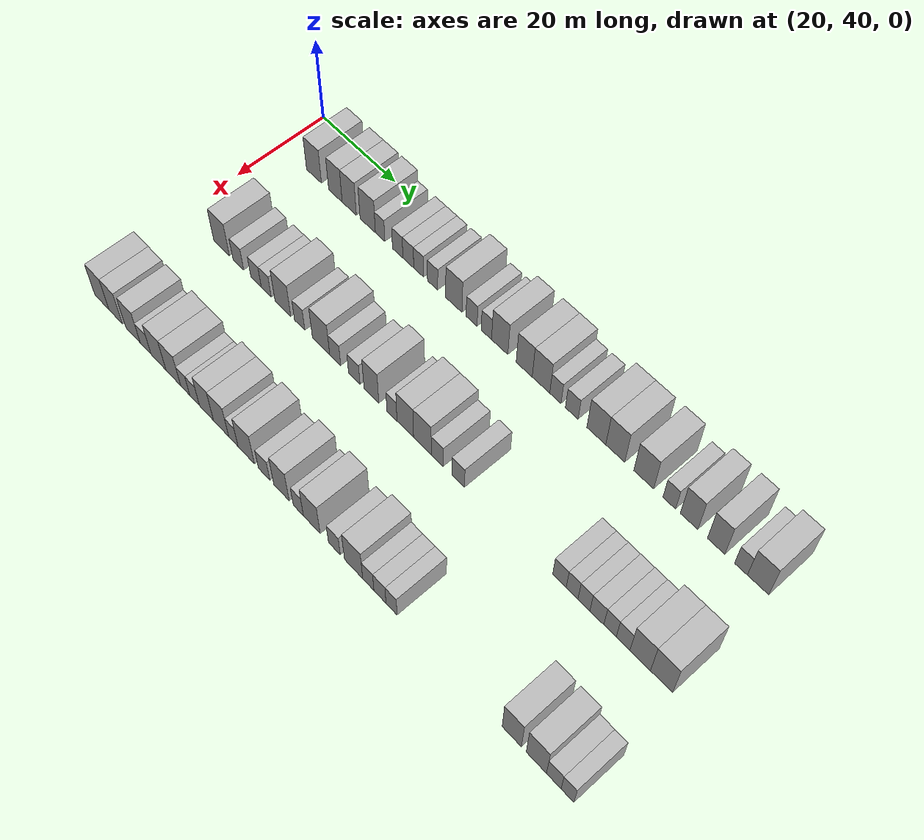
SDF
<sdf version="1.6">
 <world name="default">
  <model name="building_77">
   <static>1</static>
   <pose>25.0000 49.3601 0 0.000000 0.000000 0.000000</pose>
   <link name="link">
    <pose>0 0 4.50 0 0 0</pose>
    <collision name="collision"><geometry><box><size>10.0000 4.1657 9.0000</size></box></geometry></collision>
    <visual name="visual">
     <cast_shadows>0</cast_shadows>
     <geometry><box><size>10.0000 4.1657 9.0000</size></box></geometry>
     <material>
      <script>
       <uri>model://HANNAS_wall/materials/scripts</uri>
       <uri>model://HANNAS_wall/materials/textures</uri>
       <name>vrc/HANNAS_wall</name>
      </script>
     </material>
    </visual>
   </link>
  </model>
  <model name="building_78">
   <static>1</static>
   <pose>25.0000 55.3031 0 0.000000 0.000000 0.000000</pose>
   <link name="link">
    <pose>0 0 4.50 0 0 0</pose>
    <collision name="collision"><geometry><box><size>10.0000 3.7202 9.0000</size></box></geometry></collision>
    <visual name="visual">
     <cast_shadows>0</cast_shadows>
     <geometry><box><size>10.0000 3.7202 9.0000</size></box></geometry>
     <material>
      <script>
       <uri>model://HANNAS_wall/materials/scripts</uri>
       <uri>model://HANNAS_wall/materials/textures</uri>
       <name>vrc/HANNAS_wall</name>
      </script>
     </material>
    </visual>
   </link>
  </model>
  <model name="building_79">
   <static>1</static>
   <pose>25.0000 59.0987 0 0.000000 0.000000 0.000000</pose>
   <link name="link">
    <pose>0 0 4.50 0 0 0</pose>
    <collision name="collision"><geometry><box><size>10.0000 3.8711 9.0000</size></box></geometry></collision>
    <visual name="visual">
     <cast_shadows>0</cast_shadows>
     <geometry><box><size>10.0000 3.8711 9.0000</size></box></geometry>
     <material>
      <script>
       <uri>model://HANNAS_wall/materials/scripts</uri>
       <uri>model://HANNAS_wall/materials/textures</uri>
       <name>vrc/HANNAS_wall</name>
      </script>
     </material>
    </visual>
   </link>
  </model>
  <model name="building_80">
   <static>1</static>
   <pose>25.0000 64.0894 0 0.000000 0.000000 0.000000</pose>
   <link name="link">
    <pose>0 0 4.50 0 0 0</pose>
    <collision name="collision"><geometry><box><size>10.0000 4.1105 9.0000</size></box></geometry></collision>
    <visual name="visual">
     <cast_shadows>0</cast_shadows>
     <geometry><box><size>10.0000 4.1105 9.0000</size></box></geometry>
     <material>
      <script>
       <uri>model://HANNAS_wall/materials/scripts</uri>
       <uri>model://HANNAS_wall/materials/textures</uri>
       <name>vrc/HANNAS_wall</name>
      </script>
     </material>
    </visual>
   </link>
  </model>
  <model name="building_81">
   <static>1</static>
   <pose>25.0000 67.4068 0 0.000000 0.000000 0.000000</pose>
   <link name="link">
    <pose>0 0 3.00 0 0 0</pose>
    <collision name="collision"><geometry><box><size>10.0000 2.5242 6.0000</size></box></geometry></collision>
    <visual name="visual">
     <cast_shadows>0</cast_shadows>
     <geometry><box><size>10.0000 2.5242 6.0000</size></box></geometry>
     <material>
      <script>
       <uri>model://HANNAS_wall/materials/scripts</uri>
       <uri>model://HANNAS_wall/materials/textures</uri>
       <name>vrc/HANNAS_wall</name>
      </script>
     </material>
    </visual>
   </link>
  </model>
  <model name="building_82">
   <static>1</static>
   <pose>25.0000 72.0309 0 0.000000 0.000000 0.000000</pose>
   <link name="link">
    <pose>0 0 3.00 0 0 0</pose>
    <collision name="collision"><geometry><box><size>10.0000 2.7240 6.0000</size></box></geometry></collision>
    <visual name="visual">
     <cast_shadows>0</cast_shadows>
     <geometry><box><size>10.0000 2.7240 6.0000</size></box></geometry>
     <material>
      <script>
       <uri>model://HANNAS_wall/materials/scripts</uri>
       <uri>model://HANNAS_wall/materials/textures</uri>
       <name>vrc/HANNAS_wall</name>
      </script>
     </material>
    </visual>
   </link>
  </model>
  <model name="building_83">
   <static>1</static>
   <pose>25.0000 74.8072 0 0.000000 0.000000 0.000000</pose>
   <link name="link">
    <pose>0 0 3.00 0 0 0</pose>
    <collision name="collision"><geometry><box><size>10.0000 2.8287 6.0000</size></box></geometry></collision>
    <visual name="visual">
     <cast_shadows>0</cast_shadows>
     <geometry><box><size>10.0000 2.8287 6.0000</size></box></geometry>
     <material>
      <script>
       <uri>model://HANNAS_wall/materials/scripts</uri>
       <uri>model://HANNAS_wall/materials/textures</uri>
       <name>vrc/HANNAS_wall</name>
      </script>
     </material>
    </visual>
   </link>
  </model>
  <model name="building_84">
   <static>1</static>
   <pose>25.0000 77.4966 0 0.000000 0.000000 0.000000</pose>
   <link name="link">
    <pose>0 0 3.00 0 0 0</pose>
    <collision name="collision"><geometry><box><size>10.0000 2.5499 6.0000</size></box></geometry></collision>
    <visual name="visual">
     <cast_shadows>0</cast_shadows>
     <geometry><box><size>10.0000 2.5499 6.0000</size></box></geometry>
     <material>
      <script>
       <uri>model://HANNAS_wall/materials/scripts</uri>
       <uri>model://HANNAS_wall/materials/textures</uri>
       <name>vrc/HANNAS_wall</name>
      </script>
     </material>
    </visual>
   </link>
  </model>
  <model name="building_85">
   <static>1</static>
   <pose>25.0000 81.0801 0 0.000000 0.000000 0.000000</pose>
   <link name="link">
    <pose>0 0 3.00 0 0 0</pose>
    <collision name="collision"><geometry><box><size>10.0000 2.6172 6.0000</size></box></geometry></collision>
    <visual name="visual">
     <cast_shadows>0</cast_shadows>
     <geometry><box><size>10.0000 2.6172 6.0000</size></box></geometry>
     <material>
      <script>
       <uri>model://HANNAS_wall/materials/scripts</uri>
       <uri>model://HANNAS_wall/materials/textures</uri>
       <name>vrc/HANNAS_wall</name>
      </script>
     </material>
    </visual>
   </link>
  </model>
  <model name="building_86">
   <static>1</static>
   <pose>25.0000 86.4552 0 0.000000 0.000000 0.000000</pose>
   <link name="link">
    <pose>0 0 4.50 0 0 0</pose>
    <collision name="collision"><geometry><box><size>10.0000 4.1331 9.0000</size></box></geometry></collision>
    <visual name="visual">
     <cast_shadows>0</cast_shadows>
     <geometry><box><size>10.0000 4.1331 9.0000</size></box></geometry>
     <material>
      <script>
       <uri>model://HANNAS_wall/materials/scripts</uri>
       <uri>model://HANNAS_wall/materials/textures</uri>
       <name>vrc/HANNAS_wall</name>
      </script>
     </material>
    </visual>
   </link>
  </model>
  <model name="building_87">
   <static>1</static>
   <pose>25.0000 90.8880 0 0.000000 0.000000 0.000000</pose>
   <link name="link">
    <pose>0 0 3.00 0 0 0</pose>
    <collision name="collision"><geometry><box><size>10.0000 2.7323 6.0000</size></box></geometry></collision>
    <visual name="visual">
     <cast_shadows>0</cast_shadows>
     <geometry><box><size>10.0000 2.7323 6.0000</size></box></geometry>
     <material>
      <script>
       <uri>model://HANNAS_wall/materials/scripts</uri>
       <uri>model://HANNAS_wall/materials/textures</uri>
       <name>vrc/HANNAS_wall</name>
      </script>
     </material>
    </visual>
   </link>
  </model>
  <model name="building_88">
   <static>1</static>
   <pose>25.0000 94.5338 0 0.000000 0.000000 0.000000</pose>
   <link name="link">
    <pose>0 0 3.00 0 0 0</pose>
    <collision name="collision"><geometry><box><size>10.0000 2.5594 6.0000</size></box></geometry></collision>
    <visual name="visual">
     <cast_shadows>0</cast_shadows>
     <geometry><box><size>10.0000 2.5594 6.0000</size></box></geometry>
     <material>
      <script>
       <uri>model://HANNAS_wall/materials/scripts</uri>
       <uri>model://HANNAS_wall/materials/textures</uri>
       <name>vrc/HANNAS_wall</name>
      </script>
     </material>
    </visual>
   </link>
  </model>
  <model name="building_89">
   <static>1</static>
   <pose>25.0000 97.7946 0 0.000000 0.000000 0.000000</pose>
   <link name="link">
    <pose>0 0 4.50 0 0 0</pose>
    <collision name="collision"><geometry><box><size>10.0000 3.9622 9.0000</size></box></geometry></collision>
    <visual name="visual">
     <cast_shadows>0</cast_shadows>
     <geometry><box><size>10.0000 3.9622 9.0000</size></box></geometry>
     <material>
      <script>
       <uri>model://HANNAS_wall/materials/scripts</uri>
       <uri>model://HANNAS_wall/materials/textures</uri>
       <name>vrc/HANNAS_wall</name>
      </script>
     </material>
    </visual>
   </link>
  </model>
  <model name="building_90">
   <static>1</static>
   <pose>25.0000 103.6913 0 0.000000 0.000000 0.000000</pose>
   <link name="link">
    <pose>0 0 4.50 0 0 0</pose>
    <collision name="collision"><geometry><box><size>10.0000 3.8312 9.0000</size></box></geometry></collision>
    <visual name="visual">
     <cast_shadows>0</cast_shadows>
     <geometry><box><size>10.0000 3.8312 9.0000</size></box></geometry>
     <material>
      <script>
       <uri>model://HANNAS_wall/materials/scripts</uri>
       <uri>model://HANNAS_wall/materials/textures</uri>
       <name>vrc/HANNAS_wall</name>
      </script>
     </material>
    </visual>
   </link>
  </model>
  <model name="building_91">
   <static>1</static>
   <pose>25.0000 107.6773 0 0.000000 0.000000 0.000000</pose>
   <link name="link">
    <pose>0 0 4.50 0 0 0</pose>
    <collision name="collision"><geometry><box><size>10.0000 4.1407 9.0000</size></box></geometry></collision>
    <visual name="visual">
     <cast_shadows>0</cast_shadows>
     <geometry><box><size>10.0000 4.1407 9.0000</size></box></geometry>
     <material>
      <script>
       <uri>model://HANNAS_wall/materials/scripts</uri>
       <uri>model://HANNAS_wall/materials/textures</uri>
       <name>vrc/HANNAS_wall</name>
      </script>
     </material>
    </visual>
   </link>
  </model>
  <model name="building_92">
   <static>1</static>
   <pose>25.0000 111.0647 0 0.000000 0.000000 0.000000</pose>
   <link name="link">
    <pose>0 0 3.00 0 0 0</pose>
    <collision name="collision"><geometry><box><size>10.0000 2.6343 6.0000</size></box></geometry></collision>
    <visual name="visual">
     <cast_shadows>0</cast_shadows>
     <geometry><box><size>10.0000 2.6343 6.0000</size></box></geometry>
     <material>
      <script>
       <uri>model://HANNAS_wall/materials/scripts</uri>
       <uri>model://HANNAS_wall/materials/textures</uri>
       <name>vrc/HANNAS_wall</name>
      </script>
     </material>
    </visual>
   </link>
  </model>
  <model name="building_93">
   <static>1</static>
   <pose>25.0000 114.8504 0 0.000000 0.000000 0.000000</pose>
   <link name="link">
    <pose>0 0 3.00 0 0 0</pose>
    <collision name="collision"><geometry><box><size>10.0000 2.9370 6.0000</size></box></geometry></collision>
    <visual name="visual">
     <cast_shadows>0</cast_shadows>
     <geometry><box><size>10.0000 2.9370 6.0000</size></box></geometry>
     <material>
      <script>
       <uri>model://HANNAS_wall/materials/scripts</uri>
       <uri>model://HANNAS_wall/materials/textures</uri>
       <name>vrc/HANNAS_wall</name>
      </script>
     </material>
    </visual>
   </link>
  </model>
  <model name="building_94">
   <static>1</static>
   <pose>25.0000 120.4646 0 0.000000 0.000000 0.000000</pose>
   <link name="link">
    <pose>0 0 4.50 0 0 0</pose>
    <collision name="collision"><geometry><box><size>10.0000 4.2916 9.0000</size></box></geometry></collision>
    <visual name="visual">
     <cast_shadows>0</cast_shadows>
     <geometry><box><size>10.0000 4.2916 9.0000</size></box></geometry>
     <material>
      <script>
       <uri>model://HANNAS_wall/materials/scripts</uri>
       <uri>model://HANNAS_wall/materials/textures</uri>
       <name>vrc/HANNAS_wall</name>
      </script>
     </material>
    </visual>
   </link>
  </model>
  <model name="building_95">
   <static>1</static>
   <pose>25.0000 124.7372 0 0.000000 0.000000 0.000000</pose>
   <link name="link">
    <pose>0 0 4.50 0 0 0</pose>
    <collision name="collision"><geometry><box><size>10.0000 4.2534 9.0000</size></box></geometry></collision>
    <visual name="visual">
     <cast_shadows>0</cast_shadows>
     <geometry><box><size>10.0000 4.2534 9.0000</size></box></geometry>
     <material>
      <script>
       <uri>model://HANNAS_wall/materials/scripts</uri>
       <uri>model://HANNAS_wall/materials/textures</uri>
       <name>vrc/HANNAS_wall</name>
      </script>
     </material>
    </visual>
   </link>
  </model>
  <model name="building_96">
   <static>1</static>
   <pose>25.0000 131.0395 0 0.000000 0.000000 0.000000</pose>
   <link name="link">
    <pose>0 0 4.50 0 0 0</pose>
    <collision name="collision"><geometry><box><size>10.0000 4.3512 9.0000</size></box></geometry></collision>
    <visual name="visual">
     <cast_shadows>0</cast_shadows>
     <geometry><box><size>10.0000 4.3512 9.0000</size></box></geometry>
     <material>
      <script>
       <uri>model://HANNAS_wall/materials/scripts</uri>
       <uri>model://HANNAS_wall/materials/textures</uri>
       <name>vrc/HANNAS_wall</name>
      </script>
     </material>
    </visual>
   </link>
  </model>
  <model name="building_97">
   <static>1</static>
   <pose>25.0000 136.5811 0 0.000000 0.000000 0.000000</pose>
   <link name="link">
    <pose>0 0 3.00 0 0 0</pose>
    <collision name="collision"><geometry><box><size>10.0000 2.7320 6.0000</size></box></geometry></collision>
    <visual name="visual">
     <cast_shadows>0</cast_shadows>
     <geometry><box><size>10.0000 2.7320 6.0000</size></box></geometry>
     <material>
      <script>
       <uri>model://HANNAS_wall/materials/scripts</uri>
       <uri>model://HANNAS_wall/materials/textures</uri>
       <name>vrc/HANNAS_wall</name>
      </script>
     </material>
    </visual>
   </link>
  </model>
  <model name="building_98">
   <static>1</static>
   <pose>25.0000 140.8142 0 0.000000 0.000000 0.000000</pose>
   <link name="link">
    <pose>0 0 4.50 0 0 0</pose>
    <collision name="collision"><geometry><box><size>10.0000 3.7341 9.0000</size></box></geometry></collision>
    <visual name="visual">
     <cast_shadows>0</cast_shadows>
     <geometry><box><size>10.0000 3.7341 9.0000</size></box></geometry>
     <material>
      <script>
       <uri>model://HANNAS_wall/materials/scripts</uri>
       <uri>model://HANNAS_wall/materials/textures</uri>
       <name>vrc/HANNAS_wall</name>
      </script>
     </material>
    </visual>
   </link>
  </model>
  <model name="building_99">
   <static>1</static>
   <pose>25.0000 146.4994 0 0.000000 0.000000 0.000000</pose>
   <link name="link">
    <pose>0 0 4.50 0 0 0</pose>
    <collision name="collision"><geometry><box><size>10.0000 3.6363 9.0000</size></box></geometry></collision>
    <visual name="visual">
     <cast_shadows>0</cast_shadows>
     <geometry><box><size>10.0000 3.6363 9.0000</size></box></geometry>
     <material>
      <script>
       <uri>model://HANNAS_wall/materials/scripts</uri>
       <uri>model://HANNAS_wall/materials/textures</uri>
       <name>vrc/HANNAS_wall</name>
      </script>
     </material>
    </visual>
   </link>
  </model>
  <model name="building_100">
   <static>1</static>
   <pose>25.0000 151.6318 0 0.000000 0.000000 0.000000</pose>
   <link name="link">
    <pose>0 0 3.00 0 0 0</pose>
    <collision name="collision"><geometry><box><size>10.0000 2.6286 6.0000</size></box></geometry></collision>
    <visual name="visual">
     <cast_shadows>0</cast_shadows>
     <geometry><box><size>10.0000 2.6286 6.0000</size></box></geometry>
     <material>
      <script>
       <uri>model://HANNAS_wall/materials/scripts</uri>
       <uri>model://HANNAS_wall/materials/textures</uri>
       <name>vrc/HANNAS_wall</name>
      </script>
     </material>
    </visual>
   </link>
  </model>
  <model name="building_101">
   <static>1</static>
   <pose>25.0000 155.1230 0 0.000000 0.000000 0.000000</pose>
   <link name="link">
    <pose>0 0 4.50 0 0 0</pose>
    <collision name="collision"><geometry><box><size>10.0000 4.3538 9.0000</size></box></geometry></collision>
    <visual name="visual">
     <cast_shadows>0</cast_shadows>
     <geometry><box><size>10.0000 4.3538 9.0000</size></box></geometry>
     <material>
      <script>
       <uri>model://HANNAS_wall/materials/scripts</uri>
       <uri>model://HANNAS_wall/materials/textures</uri>
       <name>vrc/HANNAS_wall</name>
      </script>
     </material>
    </visual>
   </link>
  </model>
  <model name="building_194">
   <static>1</static>
   <pose>47.0000 50.8236 0 0.000000 0.000000 0.000000</pose>
   <link name="link">
    <pose>0 0 4.50 0 0 0</pose>
    <collision name="collision"><geometry><box><size>10.0000 4.3895 9.0000</size></box></geometry></collision>
    <visual name="visual">
     <cast_shadows>0</cast_shadows>
     <geometry><box><size>10.0000 4.3895 9.0000</size></box></geometry>
     <material>
      <script>
       <uri>model://HANNAS_wall/materials/scripts</uri>
       <uri>model://HANNAS_wall/materials/textures</uri>
       <name>vrc/HANNAS_wall</name>
      </script>
     </material>
    </visual>
   </link>
  </model>
  <model name="building_195">
   <static>1</static>
   <pose>47.0000 55.5113 0 0.000000 0.000000 0.000000</pose>
   <link name="link">
    <pose>0 0 3.00 0 0 0</pose>
    <collision name="collision"><geometry><box><size>10.0000 2.9859 6.0000</size></box></geometry></collision>
    <visual name="visual">
     <cast_shadows>0</cast_shadows>
     <geometry><box><size>10.0000 2.9859 6.0000</size></box></geometry>
     <material>
      <script>
       <uri>model://HANNAS_wall/materials/scripts</uri>
       <uri>model://HANNAS_wall/materials/textures</uri>
       <name>vrc/HANNAS_wall</name>
      </script>
     </material>
    </visual>
   </link>
  </model>
  <model name="building_196">
   <static>1</static>
   <pose>47.0000 60.4287 0 0.000000 0.000000 0.000000</pose>
   <link name="link">
    <pose>0 0 3.00 0 0 0</pose>
    <collision name="collision"><geometry><box><size>10.0000 2.8490 6.0000</size></box></geometry></collision>
    <visual name="visual">
     <cast_shadows>0</cast_shadows>
     <geometry><box><size>10.0000 2.8490 6.0000</size></box></geometry>
     <material>
      <script>
       <uri>model://HANNAS_wall/materials/scripts</uri>
       <uri>model://HANNAS_wall/materials/textures</uri>
       <name>vrc/HANNAS_wall</name>
      </script>
     </material>
    </visual>
   </link>
  </model>
  <model name="building_197">
   <static>1</static>
   <pose>47.0000 63.2108 0 0.000000 0.000000 0.000000</pose>
   <link name="link">
    <pose>0 0 3.00 0 0 0</pose>
    <collision name="collision"><geometry><box><size>10.0000 2.7151 6.0000</size></box></geometry></collision>
    <visual name="visual">
     <cast_shadows>0</cast_shadows>
     <geometry><box><size>10.0000 2.7151 6.0000</size></box></geometry>
     <material>
      <script>
       <uri>model://HANNAS_wall/materials/scripts</uri>
       <uri>model://HANNAS_wall/materials/textures</uri>
       <name>vrc/HANNAS_wall</name>
      </script>
     </material>
    </visual>
   </link>
  </model>
  <model name="building_198">
   <static>1</static>
   <pose>47.0000 67.6910 0 0.000000 0.000000 0.000000</pose>
   <link name="link">
    <pose>0 0 4.50 0 0 0</pose>
    <collision name="collision"><geometry><box><size>10.0000 4.2453 9.0000</size></box></geometry></collision>
    <visual name="visual">
     <cast_shadows>0</cast_shadows>
     <geometry><box><size>10.0000 4.2453 9.0000</size></box></geometry>
     <material>
      <script>
       <uri>model://HANNAS_wall/materials/scripts</uri>
       <uri>model://HANNAS_wall/materials/textures</uri>
       <name>vrc/HANNAS_wall</name>
      </script>
     </material>
    </visual>
   </link>
  </model>
  <model name="building_199">
   <static>1</static>
   <pose>47.0000 72.1756 0 0.000000 0.000000 0.000000</pose>
   <link name="link">
    <pose>0 0 3.00 0 0 0</pose>
    <collision name="collision"><geometry><box><size>10.0000 2.7239 6.0000</size></box></geometry></collision>
    <visual name="visual">
     <cast_shadows>0</cast_shadows>
     <geometry><box><size>10.0000 2.7239 6.0000</size></box></geometry>
     <material>
      <script>
       <uri>model://HANNAS_wall/materials/scripts</uri>
       <uri>model://HANNAS_wall/materials/textures</uri>
       <name>vrc/HANNAS_wall</name>
      </script>
     </material>
    </visual>
   </link>
  </model>
  <model name="building_200">
   <static>1</static>
   <pose>47.0000 77.7841 0 0.000000 0.000000 0.000000</pose>
   <link name="link">
    <pose>0 0 4.50 0 0 0</pose>
    <collision name="collision"><geometry><box><size>10.0000 4.4932 9.0000</size></box></geometry></collision>
    <visual name="visual">
     <cast_shadows>0</cast_shadows>
     <geometry><box><size>10.0000 4.4932 9.0000</size></box></geometry>
     <material>
      <script>
       <uri>model://HANNAS_wall/materials/scripts</uri>
       <uri>model://HANNAS_wall/materials/textures</uri>
       <name>vrc/HANNAS_wall</name>
      </script>
     </material>
    </visual>
   </link>
  </model>
  <model name="building_201">
   <static>1</static>
   <pose>47.0000 81.4481 0 0.000000 0.000000 0.000000</pose>
   <link name="link">
    <pose>0 0 3.00 0 0 0</pose>
    <collision name="collision"><geometry><box><size>10.0000 2.8346 6.0000</size></box></geometry></collision>
    <visual name="visual">
     <cast_shadows>0</cast_shadows>
     <geometry><box><size>10.0000 2.8346 6.0000</size></box></geometry>
     <material>
      <script>
       <uri>model://HANNAS_wall/materials/scripts</uri>
       <uri>model://HANNAS_wall/materials/textures</uri>
       <name>vrc/HANNAS_wall</name>
      </script>
     </material>
    </visual>
   </link>
  </model>
  <model name="building_202">
   <static>1</static>
   <pose>47.0000 86.3193 0 0.000000 0.000000 0.000000</pose>
   <link name="link">
    <pose>0 0 3.00 0 0 0</pose>
    <collision name="collision"><geometry><box><size>10.0000 2.9079 6.0000</size></box></geometry></collision>
    <visual name="visual">
     <cast_shadows>0</cast_shadows>
     <geometry><box><size>10.0000 2.9079 6.0000</size></box></geometry>
     <material>
      <script>
       <uri>model://HANNAS_wall/materials/scripts</uri>
       <uri>model://HANNAS_wall/materials/textures</uri>
       <name>vrc/HANNAS_wall</name>
      </script>
     </material>
    </visual>
   </link>
  </model>
  <model name="building_203">
   <static>1</static>
   <pose>47.0000 90.6255 0 0.000000 0.000000 0.000000</pose>
   <link name="link">
    <pose>0 0 4.50 0 0 0</pose>
    <collision name="collision"><geometry><box><size>10.0000 3.7045 9.0000</size></box></geometry></collision>
    <visual name="visual">
     <cast_shadows>0</cast_shadows>
     <geometry><box><size>10.0000 3.7045 9.0000</size></box></geometry>
     <material>
      <script>
       <uri>model://HANNAS_wall/materials/scripts</uri>
       <uri>model://HANNAS_wall/materials/textures</uri>
       <name>vrc/HANNAS_wall</name>
      </script>
     </material>
    </visual>
   </link>
  </model>
  <model name="building_204">
   <static>1</static>
   <pose>47.0000 95.7219 0 0.000000 0.000000 0.000000</pose>
   <link name="link">
    <pose>0 0 3.00 0 0 0</pose>
    <collision name="collision"><geometry><box><size>10.0000 2.4883 6.0000</size></box></geometry></collision>
    <visual name="visual">
     <cast_shadows>0</cast_shadows>
     <geometry><box><size>10.0000 2.4883 6.0000</size></box></geometry>
     <material>
      <script>
       <uri>model://HANNAS_wall/materials/scripts</uri>
       <uri>model://HANNAS_wall/materials/textures</uri>
       <name>vrc/HANNAS_wall</name>
      </script>
     </material>
    </visual>
   </link>
  </model>
  <model name="building_205">
   <static>1</static>
   <pose>47.0000 98.9837 0 0.000000 0.000000 0.000000</pose>
   <link name="link">
    <pose>0 0 4.50 0 0 0</pose>
    <collision name="collision"><geometry><box><size>10.0000 4.0352 9.0000</size></box></geometry></collision>
    <visual name="visual">
     <cast_shadows>0</cast_shadows>
     <geometry><box><size>10.0000 4.0352 9.0000</size></box></geometry>
     <material>
      <script>
       <uri>model://HANNAS_wall/materials/scripts</uri>
       <uri>model://HANNAS_wall/materials/textures</uri>
       <name>vrc/HANNAS_wall</name>
      </script>
     </material>
    </visual>
   </link>
  </model>
  <model name="building_206">
   <static>1</static>
   <pose>47.0000 103.1248 0 0.000000 0.000000 0.000000</pose>
   <link name="link">
    <pose>0 0 4.50 0 0 0</pose>
    <collision name="collision"><geometry><box><size>10.0000 4.2470 9.0000</size></box></geometry></collision>
    <visual name="visual">
     <cast_shadows>0</cast_shadows>
     <geometry><box><size>10.0000 4.2470 9.0000</size></box></geometry>
     <material>
      <script>
       <uri>model://HANNAS_wall/materials/scripts</uri>
       <uri>model://HANNAS_wall/materials/textures</uri>
       <name>vrc/HANNAS_wall</name>
      </script>
     </material>
    </visual>
   </link>
  </model>
  <model name="building_207">
   <static>1</static>
   <pose>47.0000 106.6780 0 0.000000 0.000000 0.000000</pose>
   <link name="link">
    <pose>0 0 3.00 0 0 0</pose>
    <collision name="collision"><geometry><box><size>10.0000 2.8594 6.0000</size></box></geometry></collision>
    <visual name="visual">
     <cast_shadows>0</cast_shadows>
     <geometry><box><size>10.0000 2.8594 6.0000</size></box></geometry>
     <material>
      <script>
       <uri>model://HANNAS_wall/materials/scripts</uri>
       <uri>model://HANNAS_wall/materials/textures</uri>
       <name>vrc/HANNAS_wall</name>
      </script>
     </material>
    </visual>
   </link>
  </model>
  <model name="building_208">
   <static>1</static>
   <pose>47.0000 111.5958 0 0.000000 0.000000 0.000000</pose>
   <link name="link">
    <pose>0 0 3.00 0 0 0</pose>
    <collision name="collision"><geometry><box><size>10.0000 2.9762 6.0000</size></box></geometry></collision>
    <visual name="visual">
     <cast_shadows>0</cast_shadows>
     <geometry><box><size>10.0000 2.9762 6.0000</size></box></geometry>
     <material>
      <script>
       <uri>model://HANNAS_wall/materials/scripts</uri>
       <uri>model://HANNAS_wall/materials/textures</uri>
       <name>vrc/HANNAS_wall</name>
      </script>
     </material>
    </visual>
   </link>
  </model>
  <model name="building_209">
   <static>1</static>
   <pose>47.0000 134.4720 0 0.000000 0.000000 0.000000</pose>
   <link name="link">
    <pose>0 0 3.00 0 0 0</pose>
    <collision name="collision"><geometry><box><size>10.0000 2.9254 6.0000</size></box></geometry></collision>
    <visual name="visual">
     <cast_shadows>0</cast_shadows>
     <geometry><box><size>10.0000 2.9254 6.0000</size></box></geometry>
     <material>
      <script>
       <uri>model://HANNAS_wall/materials/scripts</uri>
       <uri>model://HANNAS_wall/materials/textures</uri>
       <name>vrc/HANNAS_wall</name>
      </script>
     </material>
    </visual>
   </link>
  </model>
  <model name="building_210">
   <static>1</static>
   <pose>47.0000 137.1975 0 0.000000 0.000000 0.000000</pose>
   <link name="link">
    <pose>0 0 3.00 0 0 0</pose>
    <collision name="collision"><geometry><box><size>10.0000 2.5256 6.0000</size></box></geometry></collision>
    <visual name="visual">
     <cast_shadows>0</cast_shadows>
     <geometry><box><size>10.0000 2.5256 6.0000</size></box></geometry>
     <material>
      <script>
       <uri>model://HANNAS_wall/materials/scripts</uri>
       <uri>model://HANNAS_wall/materials/textures</uri>
       <name>vrc/HANNAS_wall</name>
      </script>
     </material>
    </visual>
   </link>
  </model>
  <model name="building_211">
   <static>1</static>
   <pose>47.0000 139.7338 0 0.000000 0.000000 0.000000</pose>
   <link name="link">
    <pose>0 0 3.00 0 0 0</pose>
    <collision name="collision"><geometry><box><size>10.0000 2.5470 6.0000</size></box></geometry></collision>
    <visual name="visual">
     <cast_shadows>0</cast_shadows>
     <geometry><box><size>10.0000 2.5470 6.0000</size></box></geometry>
     <material>
      <script>
       <uri>model://HANNAS_wall/materials/scripts</uri>
       <uri>model://HANNAS_wall/materials/textures</uri>
       <name>vrc/HANNAS_wall</name>
      </script>
     </material>
    </visual>
   </link>
  </model>
  <model name="building_212">
   <static>1</static>
   <pose>47.0000 142.4832 0 0.000000 0.000000 0.000000</pose>
   <link name="link">
    <pose>0 0 3.00 0 0 0</pose>
    <collision name="collision"><geometry><box><size>10.0000 2.9518 6.0000</size></box></geometry></collision>
    <visual name="visual">
     <cast_shadows>0</cast_shadows>
     <geometry><box><size>10.0000 2.9518 6.0000</size></box></geometry>
     <material>
      <script>
       <uri>model://HANNAS_wall/materials/scripts</uri>
       <uri>model://HANNAS_wall/materials/textures</uri>
       <name>vrc/HANNAS_wall</name>
      </script>
     </material>
    </visual>
   </link>
  </model>
  <model name="building_213">
   <static>1</static>
   <pose>47.0000 145.2595 0 0.000000 0.000000 0.000000</pose>
   <link name="link">
    <pose>0 0 3.00 0 0 0</pose>
    <collision name="collision"><geometry><box><size>10.0000 2.6008 6.0000</size></box></geometry></collision>
    <visual name="visual">
     <cast_shadows>0</cast_shadows>
     <geometry><box><size>10.0000 2.6008 6.0000</size></box></geometry>
     <material>
      <script>
       <uri>model://HANNAS_wall/materials/scripts</uri>
       <uri>model://HANNAS_wall/materials/textures</uri>
       <name>vrc/HANNAS_wall</name>
      </script>
     </material>
    </visual>
   </link>
  </model>
  <model name="building_214">
   <static>1</static>
   <pose>47.0000 147.9825 0 0.000000 0.000000 0.000000</pose>
   <link name="link">
    <pose>0 0 3.00 0 0 0</pose>
    <collision name="collision"><geometry><box><size>10.0000 2.8452 6.0000</size></box></geometry></collision>
    <visual name="visual">
     <cast_shadows>0</cast_shadows>
     <geometry><box><size>10.0000 2.8452 6.0000</size></box></geometry>
     <material>
      <script>
       <uri>model://HANNAS_wall/materials/scripts</uri>
       <uri>model://HANNAS_wall/materials/textures</uri>
       <name>vrc/HANNAS_wall</name>
      </script>
     </material>
    </visual>
   </link>
  </model>
  <model name="building_215">
   <static>1</static>
   <pose>47.0000 151.5088 0 0.000000 0.000000 0.000000</pose>
   <link name="link">
    <pose>0 0 4.50 0 0 0</pose>
    <collision name="collision"><geometry><box><size>10.0000 4.2074 9.0000</size></box></geometry></collision>
    <visual name="visual">
     <cast_shadows>0</cast_shadows>
     <geometry><box><size>10.0000 4.2074 9.0000</size></box></geometry>
     <material>
      <script>
       <uri>model://HANNAS_wall/materials/scripts</uri>
       <uri>model://HANNAS_wall/materials/textures</uri>
       <name>vrc/HANNAS_wall</name>
      </script>
     </material>
    </visual>
   </link>
  </model>
  <model name="building_216">
   <static>1</static>
   <pose>47.0000 155.8611 0 0.000000 0.000000 0.000000</pose>
   <link name="link">
    <pose>0 0 4.50 0 0 0</pose>
    <collision name="collision"><geometry><box><size>10.0000 4.4972 9.0000</size></box></geometry></collision>
    <visual name="visual">
     <cast_shadows>0</cast_shadows>
     <geometry><box><size>10.0000 4.4972 9.0000</size></box></geometry>
     <material>
      <script>
       <uri>model://HANNAS_wall/materials/scripts</uri>
       <uri>model://HANNAS_wall/materials/textures</uri>
       <name>vrc/HANNAS_wall</name>
      </script>
     </material>
    </visual>
   </link>
  </model>
  <model name="building_315">
   <static>1</static>
   <pose>69.0000 46.1591 0 0.000000 0.000000 0.000000</pose>
   <link name="link">
    <pose>0 0 4.50 0 0 0</pose>
    <collision name="collision"><geometry><box><size>10.0000 4.1110 9.0000</size></box></geometry></collision>
    <visual name="visual">
     <cast_shadows>0</cast_shadows>
     <geometry><box><size>10.0000 4.1110 9.0000</size></box></geometry>
     <material>
      <script>
       <uri>model://HANNAS_wall/materials/scripts</uri>
       <uri>model://HANNAS_wall/materials/textures</uri>
       <name>vrc/HANNAS_wall</name>
      </script>
     </material>
    </visual>
   </link>
  </model>
  <model name="building_316">
   <static>1</static>
   <pose>69.0000 50.1459 0 0.000000 0.000000 0.000000</pose>
   <link name="link">
    <pose>0 0 4.50 0 0 0</pose>
    <collision name="collision"><geometry><box><size>10.0000 3.8626 9.0000</size></box></geometry></collision>
    <visual name="visual">
     <cast_shadows>0</cast_shadows>
     <geometry><box><size>10.0000 3.8626 9.0000</size></box></geometry>
     <material>
      <script>
       <uri>model://HANNAS_wall/materials/scripts</uri>
       <uri>model://HANNAS_wall/materials/textures</uri>
       <name>vrc/HANNAS_wall</name>
      </script>
     </material>
    </visual>
   </link>
  </model>
  <model name="building_317">
   <static>1</static>
   <pose>69.0000 55.1033 0 0.000000 0.000000 0.000000</pose>
   <link name="link">
    <pose>0 0 4.50 0 0 0</pose>
    <collision name="collision"><geometry><box><size>10.0000 4.0521 9.0000</size></box></geometry></collision>
    <visual name="visual">
     <cast_shadows>0</cast_shadows>
     <geometry><box><size>10.0000 4.0521 9.0000</size></box></geometry>
     <material>
      <script>
       <uri>model://HANNAS_wall/materials/scripts</uri>
       <uri>model://HANNAS_wall/materials/textures</uri>
       <name>vrc/HANNAS_wall</name>
      </script>
     </material>
    </visual>
   </link>
  </model>
  <model name="building_318">
   <static>1</static>
   <pose>69.0000 58.6292 0 0.000000 0.000000 0.000000</pose>
   <link name="link">
    <pose>0 0 3.00 0 0 0</pose>
    <collision name="collision"><geometry><box><size>10.0000 2.9998 6.0000</size></box></geometry></collision>
    <visual name="visual">
     <cast_shadows>0</cast_shadows>
     <geometry><box><size>10.0000 2.9998 6.0000</size></box></geometry>
     <material>
      <script>
       <uri>model://HANNAS_wall/materials/scripts</uri>
       <uri>model://HANNAS_wall/materials/textures</uri>
       <name>vrc/HANNAS_wall</name>
      </script>
     </material>
    </visual>
   </link>
  </model>
  <model name="building_319">
   <static>1</static>
   <pose>69.0000 62.2077 0 0.000000 0.000000 0.000000</pose>
   <link name="link">
    <pose>0 0 4.50 0 0 0</pose>
    <collision name="collision"><geometry><box><size>10.0000 4.1571 9.0000</size></box></geometry></collision>
    <visual name="visual">
     <cast_shadows>0</cast_shadows>
     <geometry><box><size>10.0000 4.1571 9.0000</size></box></geometry>
     <material>
      <script>
       <uri>model://HANNAS_wall/materials/scripts</uri>
       <uri>model://HANNAS_wall/materials/textures</uri>
       <name>vrc/HANNAS_wall</name>
      </script>
     </material>
    </visual>
   </link>
  </model>
  <model name="building_320">
   <static>1</static>
   <pose>69.0000 66.2881 0 0.000000 0.000000 0.000000</pose>
   <link name="link">
    <pose>0 0 4.50 0 0 0</pose>
    <collision name="collision"><geometry><box><size>10.0000 4.0037 9.0000</size></box></geometry></collision>
    <visual name="visual">
     <cast_shadows>0</cast_shadows>
     <geometry><box><size>10.0000 4.0037 9.0000</size></box></geometry>
     <material>
      <script>
       <uri>model://HANNAS_wall/materials/scripts</uri>
       <uri>model://HANNAS_wall/materials/textures</uri>
       <name>vrc/HANNAS_wall</name>
      </script>
     </material>
    </visual>
   </link>
  </model>
  <model name="building_321">
   <static>1</static>
   <pose>69.0000 69.5134 0 0.000000 0.000000 0.000000</pose>
   <link name="link">
    <pose>0 0 3.00 0 0 0</pose>
    <collision name="collision"><geometry><box><size>10.0000 2.4470 6.0000</size></box></geometry></collision>
    <visual name="visual">
     <cast_shadows>0</cast_shadows>
     <geometry><box><size>10.0000 2.4470 6.0000</size></box></geometry>
     <material>
      <script>
       <uri>model://HANNAS_wall/materials/scripts</uri>
       <uri>model://HANNAS_wall/materials/textures</uri>
       <name>vrc/HANNAS_wall</name>
      </script>
     </material>
    </visual>
   </link>
  </model>
  <model name="building_322">
   <static>1</static>
   <pose>69.0000 72.0319 0 0.000000 0.000000 0.000000</pose>
   <link name="link">
    <pose>0 0 3.00 0 0 0</pose>
    <collision name="collision"><geometry><box><size>10.0000 2.5901 6.0000</size></box></geometry></collision>
    <visual name="visual">
     <cast_shadows>0</cast_shadows>
     <geometry><box><size>10.0000 2.5901 6.0000</size></box></geometry>
     <material>
      <script>
       <uri>model://HANNAS_wall/materials/scripts</uri>
       <uri>model://HANNAS_wall/materials/textures</uri>
       <name>vrc/HANNAS_wall</name>
      </script>
     </material>
    </visual>
   </link>
  </model>
  <model name="building_323">
   <static>1</static>
   <pose>69.0000 75.1927 0 0.000000 0.000000 0.000000</pose>
   <link name="link">
    <pose>0 0 4.50 0 0 0</pose>
    <collision name="collision"><geometry><box><size>10.0000 3.7316 9.0000</size></box></geometry></collision>
    <visual name="visual">
     <cast_shadows>0</cast_shadows>
     <geometry><box><size>10.0000 3.7316 9.0000</size></box></geometry>
     <material>
      <script>
       <uri>model://HANNAS_wall/materials/scripts</uri>
       <uri>model://HANNAS_wall/materials/textures</uri>
       <name>vrc/HANNAS_wall</name>
      </script>
     </material>
    </visual>
   </link>
  </model>
  <model name="building_324">
   <static>1</static>
   <pose>69.0000 79.0589 0 0.000000 0.000000 0.000000</pose>
   <link name="link">
    <pose>0 0 4.50 0 0 0</pose>
    <collision name="collision"><geometry><box><size>10.0000 4.0007 9.0000</size></box></geometry></collision>
    <visual name="visual">
     <cast_shadows>0</cast_shadows>
     <geometry><box><size>10.0000 4.0007 9.0000</size></box></geometry>
     <material>
      <script>
       <uri>model://HANNAS_wall/materials/scripts</uri>
       <uri>model://HANNAS_wall/materials/textures</uri>
       <name>vrc/HANNAS_wall</name>
      </script>
     </material>
    </visual>
   </link>
  </model>
  <model name="building_325">
   <static>1</static>
   <pose>69.0000 82.2711 0 0.000000 0.000000 0.000000</pose>
   <link name="link">
    <pose>0 0 3.00 0 0 0</pose>
    <collision name="collision"><geometry><box><size>10.0000 2.4239 6.0000</size></box></geometry></collision>
    <visual name="visual">
     <cast_shadows>0</cast_shadows>
     <geometry><box><size>10.0000 2.4239 6.0000</size></box></geometry>
     <material>
      <script>
       <uri>model://HANNAS_wall/materials/scripts</uri>
       <uri>model://HANNAS_wall/materials/textures</uri>
       <name>vrc/HANNAS_wall</name>
      </script>
     </material>
    </visual>
   </link>
  </model>
  <model name="building_326">
   <static>1</static>
   <pose>69.0000 85.5891 0 0.000000 0.000000 0.000000</pose>
   <link name="link">
    <pose>0 0 4.50 0 0 0</pose>
    <collision name="collision"><geometry><box><size>10.0000 4.2121 9.0000</size></box></geometry></collision>
    <visual name="visual">
     <cast_shadows>0</cast_shadows>
     <geometry><box><size>10.0000 4.2121 9.0000</size></box></geometry>
     <material>
      <script>
       <uri>model://HANNAS_wall/materials/scripts</uri>
       <uri>model://HANNAS_wall/materials/textures</uri>
       <name>vrc/HANNAS_wall</name>
      </script>
     </material>
    </visual>
   </link>
  </model>
  <model name="building_327">
   <static>1</static>
   <pose>69.0000 90.1462 0 0.000000 0.000000 0.000000</pose>
   <link name="link">
    <pose>0 0 3.00 0 0 0</pose>
    <collision name="collision"><geometry><box><size>10.0000 2.9020 6.0000</size></box></geometry></collision>
    <visual name="visual">
     <cast_shadows>0</cast_shadows>
     <geometry><box><size>10.0000 2.9020 6.0000</size></box></geometry>
     <material>
      <script>
       <uri>model://HANNAS_wall/materials/scripts</uri>
       <uri>model://HANNAS_wall/materials/textures</uri>
       <name>vrc/HANNAS_wall</name>
      </script>
     </material>
    </visual>
   </link>
  </model>
  <model name="building_328">
   <static>1</static>
   <pose>69.0000 94.5145 0 0.000000 0.000000 0.000000</pose>
   <link name="link">
    <pose>0 0 4.50 0 0 0</pose>
    <collision name="collision"><geometry><box><size>10.0000 3.8345 9.0000</size></box></geometry></collision>
    <visual name="visual">
     <cast_shadows>0</cast_shadows>
     <geometry><box><size>10.0000 3.8345 9.0000</size></box></geometry>
     <material>
      <script>
       <uri>model://HANNAS_wall/materials/scripts</uri>
       <uri>model://HANNAS_wall/materials/textures</uri>
       <name>vrc/HANNAS_wall</name>
      </script>
     </material>
    </visual>
   </link>
  </model>
  <model name="building_329">
   <static>1</static>
   <pose>69.0000 98.6873 0 0.000000 0.000000 0.000000</pose>
   <link name="link">
    <pose>0 0 3.00 0 0 0</pose>
    <collision name="collision"><geometry><box><size>10.0000 2.5112 6.0000</size></box></geometry></collision>
    <visual name="visual">
     <cast_shadows>0</cast_shadows>
     <geometry><box><size>10.0000 2.5112 6.0000</size></box></geometry>
     <material>
      <script>
       <uri>model://HANNAS_wall/materials/scripts</uri>
       <uri>model://HANNAS_wall/materials/textures</uri>
       <name>vrc/HANNAS_wall</name>
      </script>
     </material>
    </visual>
   </link>
  </model>
  <model name="building_330">
   <static>1</static>
   <pose>69.0000 101.9835 0 0.000000 0.000000 0.000000</pose>
   <link name="link">
    <pose>0 0 4.50 0 0 0</pose>
    <collision name="collision"><geometry><box><size>10.0000 4.0810 9.0000</size></box></geometry></collision>
    <visual name="visual">
     <cast_shadows>0</cast_shadows>
     <geometry><box><size>10.0000 4.0810 9.0000</size></box></geometry>
     <material>
      <script>
       <uri>model://HANNAS_wall/materials/scripts</uri>
       <uri>model://HANNAS_wall/materials/textures</uri>
       <name>vrc/HANNAS_wall</name>
      </script>
     </material>
    </visual>
   </link>
  </model>
  <model name="building_331">
   <static>1</static>
   <pose>69.0000 107.4422 0 0.000000 0.000000 0.000000</pose>
   <link name="link">
    <pose>0 0 3.00 0 0 0</pose>
    <collision name="collision"><geometry><box><size>10.0000 2.8365 6.0000</size></box></geometry></collision>
    <visual name="visual">
     <cast_shadows>0</cast_shadows>
     <geometry><box><size>10.0000 2.8365 6.0000</size></box></geometry>
     <material>
      <script>
       <uri>model://HANNAS_wall/materials/scripts</uri>
       <uri>model://HANNAS_wall/materials/textures</uri>
       <name>vrc/HANNAS_wall</name>
      </script>
     </material>
    </visual>
   </link>
  </model>
  <model name="building_332">
   <static>1</static>
   <pose>69.0000 112.0082 0 0.000000 0.000000 0.000000</pose>
   <link name="link">
    <pose>0 0 4.50 0 0 0</pose>
    <collision name="collision"><geometry><box><size>10.0000 4.2954 9.0000</size></box></geometry></collision>
    <visual name="visual">
     <cast_shadows>0</cast_shadows>
     <geometry><box><size>10.0000 4.2954 9.0000</size></box></geometry>
     <material>
      <script>
       <uri>model://HANNAS_wall/materials/scripts</uri>
       <uri>model://HANNAS_wall/materials/textures</uri>
       <name>vrc/HANNAS_wall</name>
      </script>
     </material>
    </visual>
   </link>
  </model>
  <model name="building_333">
   <static>1</static>
   <pose>69.0000 115.4584 0 0.000000 0.000000 0.000000</pose>
   <link name="link">
    <pose>0 0 3.00 0 0 0</pose>
    <collision name="collision"><geometry><box><size>10.0000 2.6050 6.0000</size></box></geometry></collision>
    <visual name="visual">
     <cast_shadows>0</cast_shadows>
     <geometry><box><size>10.0000 2.6050 6.0000</size></box></geometry>
     <material>
      <script>
       <uri>model://HANNAS_wall/materials/scripts</uri>
       <uri>model://HANNAS_wall/materials/textures</uri>
       <name>vrc/HANNAS_wall</name>
      </script>
     </material>
    </visual>
   </link>
  </model>
  <model name="building_334">
   <static>1</static>
   <pose>69.0000 118.1587 0 0.000000 0.000000 0.000000</pose>
   <link name="link">
    <pose>0 0 3.00 0 0 0</pose>
    <collision name="collision"><geometry><box><size>10.0000 2.7957 6.0000</size></box></geometry></collision>
    <visual name="visual">
     <cast_shadows>0</cast_shadows>
     <geometry><box><size>10.0000 2.7957 6.0000</size></box></geometry>
     <material>
      <script>
       <uri>model://HANNAS_wall/materials/scripts</uri>
       <uri>model://HANNAS_wall/materials/textures</uri>
       <name>vrc/HANNAS_wall</name>
      </script>
     </material>
    </visual>
   </link>
  </model>
  <model name="building_335">
   <static>1</static>
   <pose>69.0000 120.8247 0 0.000000 0.000000 0.000000</pose>
   <link name="link">
    <pose>0 0 3.00 0 0 0</pose>
    <collision name="collision"><geometry><box><size>10.0000 2.5363 6.0000</size></box></geometry></collision>
    <visual name="visual">
     <cast_shadows>0</cast_shadows>
     <geometry><box><size>10.0000 2.5363 6.0000</size></box></geometry>
     <material>
      <script>
       <uri>model://HANNAS_wall/materials/scripts</uri>
       <uri>model://HANNAS_wall/materials/textures</uri>
       <name>vrc/HANNAS_wall</name>
      </script>
     </material>
    </visual>
   </link>
  </model>
  <model name="building_336">
   <static>1</static>
   <pose>69.0000 147.1256 0 0.000000 0.000000 0.000000</pose>
   <link name="link">
    <pose>0 0 4.50 0 0 0</pose>
    <collision name="collision"><geometry><box><size>10.0000 4.0218 9.0000</size></box></geometry></collision>
    <visual name="visual">
     <cast_shadows>0</cast_shadows>
     <geometry><box><size>10.0000 4.0218 9.0000</size></box></geometry>
     <material>
      <script>
       <uri>model://HANNAS_wall/materials/scripts</uri>
       <uri>model://HANNAS_wall/materials/textures</uri>
       <name>vrc/HANNAS_wall</name>
      </script>
     </material>
    </visual>
   </link>
  </model>
  <model name="building_337">
   <static>1</static>
   <pose>69.0000 152.2096 0 0.000000 0.000000 0.000000</pose>
   <link name="link">
    <pose>0 0 4.50 0 0 0</pose>
    <collision name="collision"><geometry><box><size>10.0000 4.1463 9.0000</size></box></geometry></collision>
    <visual name="visual">
     <cast_shadows>0</cast_shadows>
     <geometry><box><size>10.0000 4.1463 9.0000</size></box></geometry>
     <material>
      <script>
       <uri>model://HANNAS_wall/materials/scripts</uri>
       <uri>model://HANNAS_wall/materials/textures</uri>
       <name>vrc/HANNAS_wall</name>
      </script>
     </material>
    </visual>
   </link>
  </model>
  <model name="building_338">
   <static>1</static>
   <pose>69.0000 155.7731 0 0.000000 0.000000 0.000000</pose>
   <link name="link">
    <pose>0 0 3.00 0 0 0</pose>
    <collision name="collision"><geometry><box><size>10.0000 2.9807 6.0000</size></box></geometry></collision>
    <visual name="visual">
     <cast_shadows>0</cast_shadows>
     <geometry><box><size>10.0000 2.9807 6.0000</size></box></geometry>
     <material>
      <script>
       <uri>model://HANNAS_wall/materials/scripts</uri>
       <uri>model://HANNAS_wall/materials/textures</uri>
       <name>vrc/HANNAS_wall</name>
      </script>
     </material>
    </visual>
   </link>
  </model>
  <model name="building_339">
   <static>1</static>
   <pose>69.0000 158.5512 0 0.000000 0.000000 0.000000</pose>
   <link name="link">
    <pose>0 0 3.00 0 0 0</pose>
    <collision name="collision"><geometry><box><size>10.0000 2.5755 6.0000</size></box></geometry></collision>
    <visual name="visual">
     <cast_shadows>0</cast_shadows>
     <geometry><box><size>10.0000 2.5755 6.0000</size></box></geometry>
     <material>
      <script>
       <uri>model://HANNAS_wall/materials/scripts</uri>
       <uri>model://HANNAS_wall/materials/textures</uri>
       <name>vrc/HANNAS_wall</name>
      </script>
     </material>
    </visual>
   </link>
  </model>
 </world>
</sdf>
